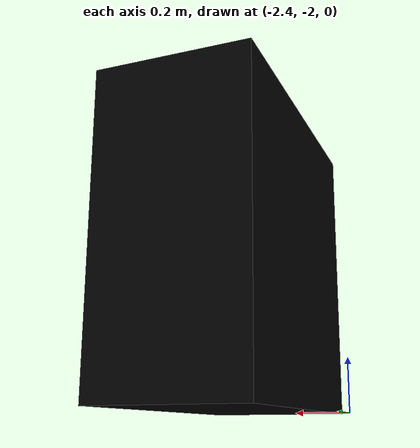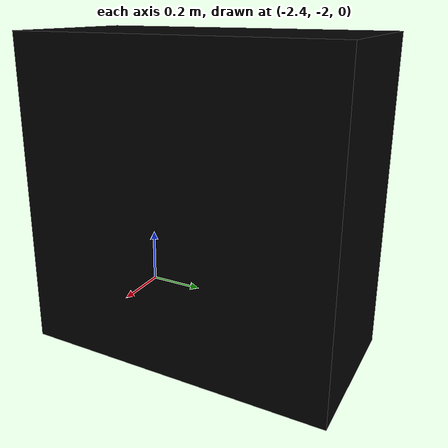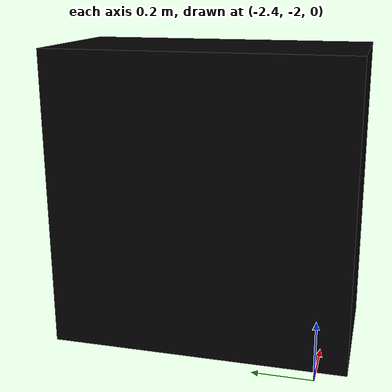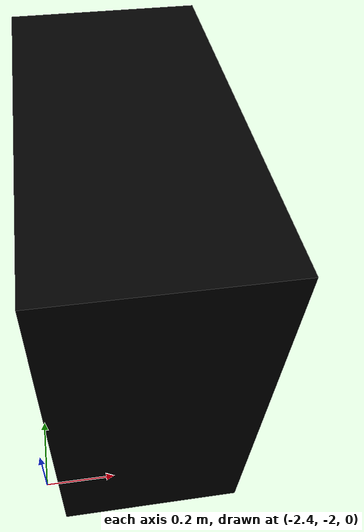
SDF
<?xml version="1.0"?>
<sdf version="1.8">
  <model name="gate1">
    <pose>-2.1 -1.6 0.5 0 0 0</pose>
    <static>true</static>
    <link name="link">
      <pose>0 0 0 0 0 0</pose>
      <collision name="collision">
        <geometry>
          <box>
            <size>0.5 1.0 1.0</size>
          </box>
        </geometry>
      </collision>
      <visual name="visual">
        <geometry>
          <box>
            <size>0.5 1.0 1.0</size>
          </box>
        </geometry>
        <material>
          <ambient>0 0 0 1</ambient>
          <diffuse>0 0 0 1</diffuse>
        </material>
      </visual>
    </link>
    <!-- NEW PLUGIN for Ground Truth Pose -->
<plugin
  filename="gz-sim-odometry-publisher-system"
  name="gz::sim::systems::OdometryPublisher">

</plugin>

  </model>
</sdf>
